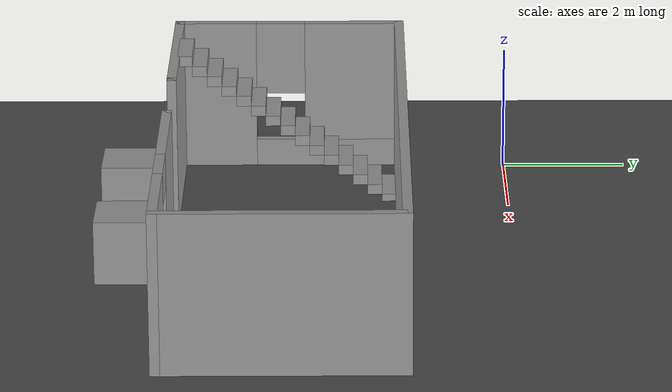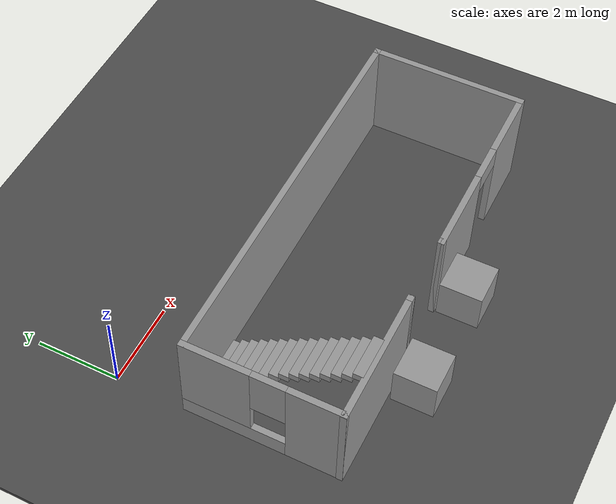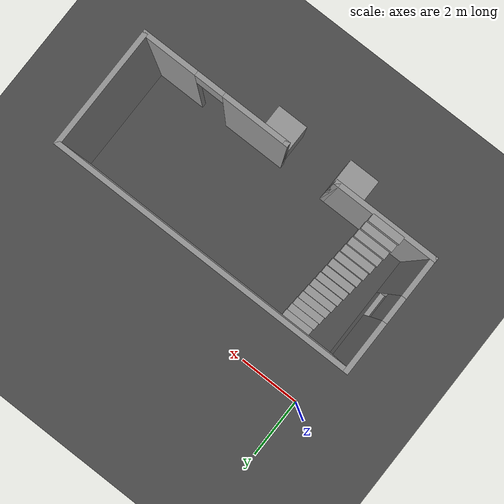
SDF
<sdf version="1.6">
 <world name="default">
  <light name="sun" type="directional">
   <pose>0 0 10 0 -0 0</pose>
   <diffuse>0.8 0.8 0.8 1</diffuse>
   <specular>0.2 0.2 0.2 1</specular>
   <attenuation>
    <range>1000</range>
    <constant>0.9</constant>
    <linear>0.01</linear>
    <quadratic>0.001</quadratic>
   </attenuation>
   <direction>-0.5 0.1 -0.9</direction>
  </light>
  <model name="ground_plane">
   <static>1</static>
   <link name="link">
    <collision name="collision">
     <geometry><plane><normal>0 0 1</normal><size>100 100</size></plane></geometry>
     <surface>
      <contact><collide_bitmask>65535</collide_bitmask></contact>
      <friction><ode><mu>100</mu><mu2>50</mu2></ode></friction>
     </surface>
    </collision>
    <visual name="visual">
     <cast_shadows>0</cast_shadows>
     <geometry><plane><normal>0 0 1</normal><size>100 100</size></plane></geometry>
     <material>
      <script><uri>file://media/materials/scripts/gazebo.material</uri><name>Gazebo/Grey</name></script>
     </material>
    </visual>
   </link>
  </model>
  <model name="asphalt_plane">
   <pose>0.045857 0.029128 0 0 -0 0</pose>
   <static>1</static>
   <link name="link">
    <collision name="collision"><geometry><box><size>200 200 0.1</size></box></geometry></collision>
    <visual name="visual">
     <cast_shadows>0</cast_shadows>
     <geometry><box><size>200 200 0.1</size></box></geometry>
     <material>
      <script>
       <uri>model://asphalt_plane/materials/scripts</uri>
       <uri>model://asphalt_plane/materials/textures</uri>
       <ambient>1 0 0 1</ambient>
       <diffuse>1 0 0 1</diffuse>
       <specular>0.1 0.1 0.1 1</specular>
       <emissive>0 0 0 0</emissive>
       <name>vrc/asphalt</name>
      </script>
     </material>
    </visual>
   </link>
  </model>
  <physics name="default_physics" default="0" type="ode">
   <ode>
    <solver>
     <type>quick</type>
     <iters>10</iters>
     <sor>1.3</sor>
     <use_dynamic_moi_rescaling>0</use_dynamic_moi_rescaling>
    </solver>
    <constraints>
     <cfm>0</cfm>
     <erp>0.2</erp>
     <contact_max_correcting_vel>100</contact_max_correcting_vel>
     <contact_surface_layer>0.001</contact_surface_layer>
    </constraints>
   </ode>
   <max_step_size>0.004</max_step_size>
   <real_time_factor>1</real_time_factor>
   <real_time_update_rate>250</real_time_update_rate>
  </physics>
  <gravity>0 0 -9.8066</gravity>
  <magnetic_field>6e-06 2.3e-05 -4.2e-05</magnetic_field>
  <atmosphere type="adiabatic"/>
  <scene><ambient>0.4 0.4 0.4 1</ambient><background>0.7 0.7 0.7 1</background><shadows>1</shadows></scene>
  <spherical_coordinates>
   <surface_model>EARTH_WGS84</surface_model>
   <latitude_deg>0</latitude_deg>
   <longitude_deg>0</longitude_deg>
   <elevation>0</elevation>
   <heading_deg>0</heading_deg>
  </spherical_coordinates>
  <model name="unit_box">
   <pose>2.69744 -5.97848 0.549946 0.000103 -1e-06 -0.000881</pose>
   <link name="link">
    <inertial>
     <mass>1</mass>
     <inertia>
      <ixx>0.166667</ixx>
      <ixy>0</ixy>
      <ixz>0</ixz>
      <iyy>0.166667</iyy>
      <iyz>0</iyz>
      <izz>0.166667</izz>
     </inertia>
    </inertial>
    <collision name="collision"><geometry><box><size>1 1 1</size></box></geometry></collision>
    <visual name="visual">
     <geometry><box><size>1 1 1</size></box></geometry>
     <material>
      <script><name>Gazebo/Grey</name><uri>file://media/materials/scripts/gazebo.material</uri></script>
     </material>
    </visual>
   </link>
  </model>
  <model name="Test._world">
   <pose>4.70024 -3.07553 0 0 -0 0</pose>
   <link name="Stairs_0">
    <visual name="Stairs_0_Visual_0">
     <pose>-3.26 1.15583 0.083333 0 -0 0</pose>
     <geometry><box><size>1 0.233333 0.166667</size></box></geometry>
     <material>
      <script><uri>file://media/materials/scripts/gazebo.material</uri><name>Gazebo/Grey</name></script>
      <ambient>1 1 1 1</ambient>
     </material>
     <meta><layer>0</layer></meta>
    </visual>
    <collision name="Stairs_0_Collision_0">
     <geometry><box><size>1 0.233333 0.166667</size></box></geometry>
     <pose>-3.26 1.15583 0.083333 0 -0 0</pose>
    </collision>
    <visual name="Stairs_0_Visual_1">
     <pose>-3.26 0.9225 0.25 0 -0 0</pose>
     <geometry><box><size>1 0.233333 0.166667</size></box></geometry>
     <material>
      <script><uri>file://media/materials/scripts/gazebo.material</uri><name>Gazebo/Grey</name></script>
      <ambient>1 1 1 1</ambient>
     </material>
     <meta><layer>0</layer></meta>
    </visual>
    <collision name="Stairs_0_Collision_1">
     <geometry><box><size>1 0.233333 0.166667</size></box></geometry>
     <pose>-3.26 0.9225 0.25 0 -0 0</pose>
    </collision>
    <visual name="Stairs_0_Visual_2">
     <pose>-3.26 0.689167 0.416667 0 -0 0</pose>
     <geometry><box><size>1 0.233333 0.166667</size></box></geometry>
     <material>
      <script><uri>file://media/materials/scripts/gazebo.material</uri><name>Gazebo/Grey</name></script>
      <ambient>1 1 1 1</ambient>
     </material>
     <meta><layer>0</layer></meta>
    </visual>
    <collision name="Stairs_0_Collision_2">
     <geometry><box><size>1 0.233333 0.166667</size></box></geometry>
     <pose>-3.26 0.689167 0.416667 0 -0 0</pose>
    </collision>
    <visual name="Stairs_0_Visual_3">
     <pose>-3.26 0.455834 0.583333 0 -0 0</pose>
     <geometry><box><size>1 0.233333 0.166667</size></box></geometry>
     <material>
      <script><uri>file://media/materials/scripts/gazebo.material</uri><name>Gazebo/Grey</name></script>
      <ambient>1 1 1 1</ambient>
     </material>
     <meta><layer>0</layer></meta>
    </visual>
    <collision name="Stairs_0_Collision_3">
     <geometry><box><size>1 0.233333 0.166667</size></box></geometry>
     <pose>-3.26 0.455834 0.583333 0 -0 0</pose>
    </collision>
    <visual name="Stairs_0_Visual_4">
     <pose>-3.26 0.2225 0.75 0 -0 0</pose>
     <geometry><box><size>1 0.233333 0.166667</size></box></geometry>
     <material>
      <script><uri>file://media/materials/scripts/gazebo.material</uri><name>Gazebo/Grey</name></script>
      <ambient>1 1 1 1</ambient>
     </material>
     <meta><layer>0</layer></meta>
    </visual>
    <collision name="Stairs_0_Collision_4">
     <geometry><box><size>1 0.233333 0.166667</size></box></geometry>
     <pose>-3.26 0.2225 0.75 0 -0 0</pose>
    </collision>
    <visual name="Stairs_0_Visual_5">
     <pose>-3.26 -0.010833 0.916667 0 -0 0</pose>
     <geometry><box><size>1 0.233333 0.166667</size></box></geometry>
     <material>
      <script><uri>file://media/materials/scripts/gazebo.material</uri><name>Gazebo/Grey</name></script>
      <ambient>1 1 1 1</ambient>
     </material>
     <meta><layer>0</layer></meta>
    </visual>
    <collision name="Stairs_0_Collision_5">
     <geometry><box><size>1 0.233333 0.166667</size></box></geometry>
     <pose>-3.26 -0.010833 0.916667 0 -0 0</pose>
    </collision>
    <visual name="Stairs_0_Visual_6">
     <pose>-3.26 -0.244166 1.08333 0 -0 0</pose>
     <geometry><box><size>1 0.233333 0.166667</size></box></geometry>
     <material>
      <script><uri>file://media/materials/scripts/gazebo.material</uri><name>Gazebo/Grey</name></script>
      <ambient>1 1 1 1</ambient>
     </material>
     <meta><layer>0</layer></meta>
    </visual>
    <collision name="Stairs_0_Collision_6">
     <geometry><box><size>1 0.233333 0.166667</size></box></geometry>
     <pose>-3.26 -0.244166 1.08333 0 -0 0</pose>
    </collision>
    <visual name="Stairs_0_Visual_7">
     <pose>-3.26 -0.4775 1.25 0 -0 0</pose>
     <geometry><box><size>1 0.233333 0.166667</size></box></geometry>
     <material>
      <script><uri>file://media/materials/scripts/gazebo.material</uri><name>Gazebo/Grey</name></script>
      <ambient>1 1 1 1</ambient>
     </material>
     <meta><layer>0</layer></meta>
    </visual>
    <collision name="Stairs_0_Collision_7">
     <geometry><box><size>1 0.233333 0.166667</size></box></geometry>
     <pose>-3.26 -0.4775 1.25 0 -0 0</pose>
    </collision>
    <visual name="Stairs_0_Visual_8">
     <pose>-3.26 -0.710833 1.41667 0 -0 0</pose>
     <geometry><box><size>1 0.233333 0.166667</size></box></geometry>
     <material>
      <script><uri>file://media/materials/scripts/gazebo.material</uri><name>Gazebo/Grey</name></script>
      <ambient>1 1 1 1</ambient>
     </material>
     <meta><layer>0</layer></meta>
    </visual>
    <collision name="Stairs_0_Collision_8">
     <geometry><box><size>1 0.233333 0.166667</size></box></geometry>
     <pose>-3.26 -0.710833 1.41667 0 -0 0</pose>
    </collision>
    <visual name="Stairs_0_Visual_9">
     <pose>-3.26 -0.944166 1.58333 0 -0 0</pose>
     <geometry><box><size>1 0.233333 0.166667</size></box></geometry>
     <material>
      <script><uri>file://media/materials/scripts/gazebo.material</uri><name>Gazebo/Grey</name></script>
      <ambient>1 1 1 1</ambient>
     </material>
     <meta><layer>0</layer></meta>
    </visual>
    <collision name="Stairs_0_Collision_9">
     <geometry><box><size>1 0.233333 0.166667</size></box></geometry>
     <pose>-3.26 -0.944166 1.58333 0 -0 0</pose>
    </collision>
    <visual name="Stairs_0_Visual_10">
     <pose>-3.26 -1.1775 1.75 0 -0 0</pose>
     <geometry><box><size>1 0.233333 0.166667</size></box></geometry>
     <material>
      <script><uri>file://media/materials/scripts/gazebo.material</uri><name>Gazebo/Grey</name></script>
      <ambient>1 1 1 1</ambient>
     </material>
     <meta><layer>0</layer></meta>
    </visual>
    <collision name="Stairs_0_Collision_10">
     <geometry><box><size>1 0.233333 0.166667</size></box></geometry>
     <pose>-3.26 -1.1775 1.75 0 -0 0</pose>
    </collision>
    <visual name="Stairs_0_Visual_11">
     <pose>-3.26 -1.41083 1.91667 0 -0 0</pose>
     <geometry><box><size>1 0.233333 0.166667</size></box></geometry>
     <material>
      <script><uri>file://media/materials/scripts/gazebo.material</uri><name>Gazebo/Grey</name></script>
      <ambient>1 1 1 1</ambient>
     </material>
     <meta><layer>0</layer></meta>
    </visual>
    <collision name="Stairs_0_Collision_11">
     <geometry><box><size>1 0.233333 0.166667</size></box></geometry>
     <pose>-3.26 -1.41083 1.91667 0 -0 0</pose>
    </collision>
    <visual name="Stairs_0_Visual_12">
     <pose>-3.26 -1.64417 2.08333 0 -0 0</pose>
     <geometry><box><size>1 0.233333 0.166667</size></box></geometry>
     <material>
      <script><uri>file://media/materials/scripts/gazebo.material</uri><name>Gazebo/Grey</name></script>
      <ambient>1 1 1 1</ambient>
     </material>
     <meta><layer>0</layer></meta>
    </visual>
    <collision name="Stairs_0_Collision_12">
     <geometry><box><size>1 0.233333 0.166667</size></box></geometry>
     <pose>-3.26 -1.64417 2.08333 0 -0 0</pose>
    </collision>
    <visual name="Stairs_0_Visual_13">
     <pose>-3.26 -1.8775 2.25 0 -0 0</pose>
     <geometry><box><size>1 0.233333 0.166667</size></box></geometry>
     <material>
      <script><uri>file://media/materials/scripts/gazebo.material</uri><name>Gazebo/Grey</name></script>
      <ambient>1 1 1 1</ambient>
     </material>
     <meta><layer>0</layer></meta>
    </visual>
    <collision name="Stairs_0_Collision_13">
     <geometry><box><size>1 0.233333 0.166667</size></box></geometry>
     <pose>-3.26 -1.8775 2.25 0 -0 0</pose>
    </collision>
    <visual name="Stairs_0_Visual_14">
     <pose>-3.26 -2.11083 2.41667 0 -0 0</pose>
     <geometry><box><size>1 0.233333 0.166667</size></box></geometry>
     <material>
      <script><uri>file://media/materials/scripts/gazebo.material</uri><name>Gazebo/Grey</name></script>
      <ambient>1 1 1 1</ambient>
     </material>
     <meta><layer>0</layer></meta>
    </visual>
    <collision name="Stairs_0_Collision_14">
     <geometry><box><size>1 0.233333 0.166667</size></box></geometry>
     <pose>-3.26 -2.11083 2.41667 0 -0 0</pose>
    </collision>
   </link>
   <link name="Wall_0">
    <collision name="Wall_0_Collision">
     <geometry><box><size>0.16 0.15 2.5</size></box></geometry>
     <pose>0 0 1.25 0 -0 0</pose>
    </collision>
    <visual name="Wall_0_Visual">
     <pose>0 0 1.25 0 -0 0</pose>
     <geometry><box><size>0.16 0.15 2.5</size></box></geometry>
     <material>
      <script><uri>file://media/materials/scripts/gazebo.material</uri><name>Gazebo/Grey</name></script>
      <ambient>1 1 1 1</ambient>
     </material>
     <meta><layer>0</layer></meta>
    </visual>
    <pose>-4.675 -2.2675 0 0 -0 0</pose>
   </link>
   <link name="Wall_1">
    <pose>-4.67 -0.4675 0 0 -0 1.5708</pose>
    <visual name="Wall_1_Visual_0">
     <pose>-1.2125 0 1.25 0 -0 0</pose>
     <geometry><box><size>1.325 0.15 2.5</size></box></geometry>
     <material>
      <script><uri>file://media/materials/scripts/gazebo.material</uri><name>Gazebo/Grey</name></script>
      <ambient>1 1 1 1</ambient>
     </material>
     <meta><layer>0</layer></meta>
    </visual>
    <collision name="Wall_1_Collision_0">
     <geometry><box><size>1.325 0.15 2.5</size></box></geometry>
     <pose>-1.2125 0 1.25 0 -0 0</pose>
    </collision>
    <visual name="Wall_1_Visual_1">
     <pose>0.6625 0 0.25 0 -0 0</pose>
     <geometry><box><size>2.425 0.15 0.5</size></box></geometry>
     <material>
      <script><uri>file://media/materials/scripts/gazebo.material</uri><name>Gazebo/Grey</name></script>
      <ambient>1 1 1 1</ambient>
     </material>
     <meta><layer>0</layer></meta>
    </visual>
    <collision name="Wall_1_Collision_1">
     <geometry><box><size>2.425 0.15 0.5</size></box></geometry>
     <pose>0.6625 0 0.25 0 -0 0</pose>
    </collision>
    <visual name="Wall_1_Visual_2">
     <pose>1.0625 0 1.5 0 -0 0</pose>
     <geometry><box><size>1.625 0.15 2</size></box></geometry>
     <material>
      <script><uri>file://media/materials/scripts/gazebo.material</uri><name>Gazebo/Grey</name></script>
      <ambient>1 1 1 1</ambient>
     </material>
     <meta><layer>0</layer></meta>
    </visual>
    <collision name="Wall_1_Collision_2">
     <geometry><box><size>1.625 0.15 2</size></box></geometry>
     <pose>1.0625 0 1.5 0 -0 0</pose>
    </collision>
    <visual name="Wall_1_Visual_3">
     <pose>-0.15 0 1.9 0 -0 0</pose>
     <geometry><box><size>0.8 0.15 1.2</size></box></geometry>
     <material>
      <script><uri>file://media/materials/scripts/gazebo.material</uri><name>Gazebo/Grey</name></script>
      <ambient>1 1 1 1</ambient>
     </material>
     <meta><layer>0</layer></meta>
    </visual>
    <collision name="Wall_1_Collision_3">
     <geometry><box><size>0.8 0.15 1.2</size></box></geometry>
     <pose>-0.15 0 1.9 0 -0 0</pose>
    </collision>
   </link>
   <link name="Wall_2">
    <collision name="Wall_2_Collision">
     <geometry><box><size>9.5 0.15 2.5</size></box></geometry>
     <pose>0 0 1.25 0 -0 0</pose>
    </collision>
    <visual name="Wall_2_Visual">
     <pose>0 0 1.25 0 -0 0</pose>
     <geometry><box><size>9.5 0.15 2.5</size></box></geometry>
     <material>
      <script><uri>file://media/materials/scripts/gazebo.material</uri><name>Gazebo/Grey</name></script>
      <ambient>1 1 1 1</ambient>
     </material>
     <meta><layer>0</layer></meta>
    </visual>
    <pose>0.005 1.3325 0 0 -0 0</pose>
   </link>
   <link name="Wall_3">
    <collision name="Wall_3_Collision">
     <geometry><box><size>3.75 0.15 2.5</size></box></geometry>
     <pose>0 0 1.25 0 -0 0</pose>
    </collision>
    <visual name="Wall_3_Visual">
     <pose>0 0 1.25 0 -0 0</pose>
     <geometry><box><size>3.75 0.15 2.5</size></box></geometry>
     <material>
      <script><uri>file://media/materials/scripts/gazebo.material</uri><name>Gazebo/Grey</name></script>
      <ambient>1 1 1 1</ambient>
     </material>
     <meta><layer>0</layer></meta>
    </visual>
    <pose>4.68 -0.4675 0 0 -0 -1.5708</pose>
   </link>
   <link name="Wall_4">
    <pose>2.38 -2.2675 0 0 -0 3.14159</pose>
    <visual name="Wall_4_Visual_0">
     <pose>-1.5025 0 1.25 0 -0 0</pose>
     <geometry><box><size>1.745 0.15 2.5</size></box></geometry>
     <material>
      <script><uri>file://media/materials/scripts/gazebo.material</uri><name>Gazebo/Grey</name></script>
      <ambient>1 1 1 1</ambient>
     </material>
     <meta><layer>0</layer></meta>
    </visual>
    <collision name="Wall_4_Collision_0">
     <geometry><box><size>1.745 0.15 2.5</size></box></geometry>
     <pose>-1.5025 0 1.25 0 -0 0</pose>
    </collision>
    <visual name="Wall_4_Visual_1">
     <pose>1.3225 0 1.25 0 -0 0</pose>
     <geometry><box><size>2.105 0.15 2.5</size></box></geometry>
     <material>
      <script><uri>file://media/materials/scripts/gazebo.material</uri><name>Gazebo/Grey</name></script>
      <ambient>1 1 1 1</ambient>
     </material>
     <meta><layer>0</layer></meta>
    </visual>
    <collision name="Wall_4_Collision_1">
     <geometry><box><size>2.105 0.15 2.5</size></box></geometry>
     <pose>1.3225 0 1.25 0 -0 0</pose>
    </collision>
    <visual name="Wall_4_Visual_2">
     <pose>-0.18 0 2.25 0 -0 0</pose>
     <geometry><box><size>0.9 0.15 0.5</size></box></geometry>
     <material>
      <script><uri>file://media/materials/scripts/gazebo.material</uri><name>Gazebo/Grey</name></script>
      <ambient>1 1 1 1</ambient>
     </material>
     <meta><layer>0</layer></meta>
    </visual>
    <collision name="Wall_4_Collision_2">
     <geometry><box><size>0.9 0.15 0.5</size></box></geometry>
     <pose>-0.18 0 2.25 0 -0 0</pose>
    </collision>
   </link>
   <link name="Wall_5">
    <collision name="Wall_5_Collision">
     <geometry><box><size>0.15 0.15 2.5</size></box></geometry>
     <pose>0 0 1.25 0 -0 0</pose>
    </collision>
    <visual name="Wall_5_Visual">
     <pose>0 0 1.25 0 -0 0</pose>
     <geometry><box><size>0.15 0.15 2.5</size></box></geometry>
     <material>
      <script><uri>file://media/materials/scripts/gazebo.material</uri><name>Gazebo/Grey</name></script>
      <ambient>1 1 1 1</ambient>
     </material>
     <meta><layer>0</layer></meta>
    </visual>
    <pose>0.08 -2.2675 0 0 -0 0</pose>
   </link>
   <link name="Wall_6">
    <collision name="Wall_6_Collision">
     <geometry><box><size>0.15 0.15 2.5</size></box></geometry>
     <pose>0 0 1.25 0 -0 0</pose>
    </collision>
    <visual name="Wall_6_Visual">
     <pose>0 0 1.25 0 -0 0</pose>
     <geometry><box><size>0.15 0.15 2.5</size></box></geometry>
     <material>
      <script><uri>file://media/materials/scripts/gazebo.material</uri><name>Gazebo/Grey</name></script>
      <ambient>1 1 1 1</ambient>
     </material>
     <meta><layer>0</layer></meta>
    </visual>
    <pose>0.08 -2.2675 0 0 -0 0</pose>
   </link>
   <link name="Wall_8">
    <collision name="Wall_8_Collision">
     <geometry><box><size>3.25 0.15 2.5</size></box></geometry>
     <pose>0 0 1.25 0 -0 0</pose>
    </collision>
    <visual name="Wall_8_Visual">
     <pose>0 0 1.25 0 -0 0</pose>
     <geometry><box><size>3.25 0.15 2.5</size></box></geometry>
     <material>
      <script><uri>file://media/materials/scripts/gazebo.material</uri><name>Gazebo/Grey</name></script>
      <ambient>1 1 1 1</ambient>
     </material>
     <meta><layer>0</layer></meta>
    </visual>
    <pose>-3.12 -2.2675 0 0 -0 0</pose>
   </link>
   <link name="Wall_9">
    <collision name="Wall_9_Collision">
     <geometry><box><size>0.15 0.15 2.5</size></box></geometry>
     <pose>0 0 1.25 0 -0 0</pose>
    </collision>
    <visual name="Wall_9_Visual">
     <pose>0 0 1.25 0 -0 0</pose>
     <geometry><box><size>0.15 0.15 2.5</size></box></geometry>
     <material>
      <script><uri>file://media/materials/scripts/gazebo.material</uri><name>Gazebo/Grey</name></script>
      <ambient>1 1 1 1</ambient>
     </material>
     <meta><layer>0</layer></meta>
    </visual>
    <pose>-1.57 -2.2675 0 0 -0 0</pose>
   </link>
   <static>1</static>
  </model>
  <model name="unit_box_clone">
   <pose>5.25185 -5.94358 0.549947 -0.0001 1e-06 -0.00088</pose>
   <link name="link">
    <inertial>
     <mass>1</mass>
     <inertia>
      <ixx>0.166667</ixx>
      <ixy>0</ixy>
      <ixz>0</ixz>
      <iyy>0.166667</iyy>
      <iyz>0</iyz>
      <izz>0.166667</izz>
     </inertia>
    </inertial>
    <collision name="collision"><geometry><box><size>1 1 1</size></box></geometry></collision>
    <visual name="visual">
     <geometry><box><size>1 1 1</size></box></geometry>
     <material>
      <script><name>Gazebo/Grey</name><uri>file://media/materials/scripts/gazebo.material</uri></script>
     </material>
    </visual>
   </link>
  </model>
 </world>
</sdf>
